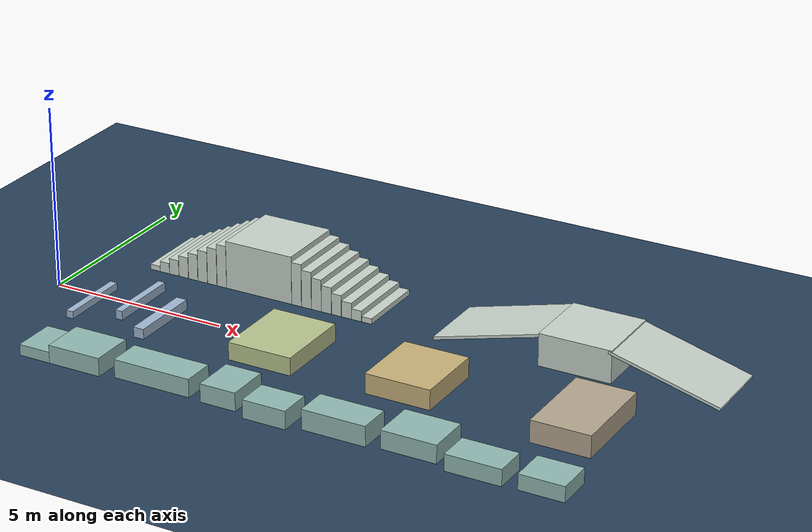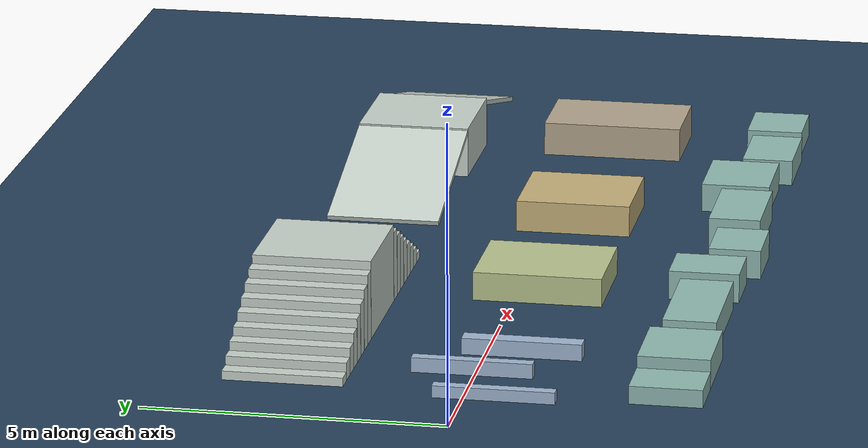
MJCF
<mujoco model="parkour_terrain">
  <include file="materials.xml"/>

  <worldbody>
    <light name="fill_light" directional="true" diffuse="0.6 0.6 0.6" specular="0.02 0.02 0.02" pos="-2 3 3" dir="0.5 -0.5 -1" castshadow="false" cutoff="255"/>
    <light name="rim_light" directional="true" diffuse="0.35 0.35 0.35" specular="0.01 0.01 0.01" pos="0 -4 3" dir="0 0.7 -1" castshadow="false" cutoff="255"/>
    <light name="ambient_fill" directional="false" diffuse="0.4 0.4 0.4" specular="0 0 0" pos="0 0 3" castshadow="false" cutoff="255"/>
    <geom name="floor" size="0 0 0.05" friction="0.75 .1 .1" type="plane" material="groundplane"/>

    <!-- [> 0.60 m high platform, followed by a short landing section back at ground height. <] -->
    <!-- [> Stair up then down: 0.30 m tread length, 0.16 m height increments. <] -->
    <!-- [> 0.60 m gap: run-up ends at x=10.20 and landing starts at x=10.80. <] -->
    <!-- [> 0.70 m gap: run-up ends at x=10.20 and landing starts at x=10.80. <] -->

    <geom name="Stairs_2" type="box" size="0.1455 1 0.075" pos="1.7 3 0.075" rgba="0.784314 0.827451 0.796078 1" friction="1 0.005 0.0001" condim="3"/>
    <geom name="Stairs_2_step_02" type="box" size="0.1455 1 0.15" pos="2 3 0.15" rgba="0.784314 0.827451 0.796078 1" friction="1 0.005 0.0001" condim="3"/>
    <geom name="Stairs_2_step_03" type="box" size="0.1455 1 0.225" pos="2.3 3 0.225" rgba="0.784314 0.827451 0.796078 1" friction="1 0.005 0.0001" condim="3"/>
    <geom name="Stairs_2_step_04" type="box" size="0.1455 1 0.3" pos="2.6 3 0.3" rgba="0.784314 0.827451 0.796078 1" friction="1 0.005 0.0001" condim="3"/>
    <geom name="Stairs_2_step_05" type="box" size="0.1455 1 0.375" pos="2.9 3 0.375" rgba="0.784314 0.827451 0.796078 1" friction="1 0.005 0.0001" condim="3"/>
    <geom name="Stairs_2_step_06" type="box" size="0.1455 1 0.45" pos="3.2 3 0.45" rgba="0.784314 0.827451 0.796078 1" friction="1 0.005 0.0001" condim="3"/>
    <geom name="Stairs_2_step_07" type="box" size="0.1455 1 0.525" pos="3.5 3 0.525" rgba="0.784314 0.827451 0.796078 1" friction="1 0.005 0.0001" condim="3"/>
    <geom name="Stairs_2_step_08" type="box" size="0.1455 1 0.6" pos="3.8 3 0.6" rgba="0.784314 0.827451 0.796078 1" friction="1 0.005 0.0001" condim="3"/>
    <geom name="Stairs_2_copy" type="box" size="0.1455 1 0.075" pos="8.2 3 0.075" quat="0 0 0 -1" rgba="0.784314 0.827451 0.796078 1" friction="1 0.005 0.0001" condim="3"/>
    <geom name="Stairs_2_copy_step_02" type="box" size="0.1455 1 0.15" pos="7.9 3 0.15" quat="0 0 0 -1" rgba="0.784314 0.827451 0.796078 1" friction="1 0.005 0.0001" condim="3"/>
    <geom name="Stairs_2_copy_step_03" type="box" size="0.1455 1 0.225" pos="7.6 3 0.225" quat="0 0 0 -1" rgba="0.784314 0.827451 0.796078 1" friction="1 0.005 0.0001" condim="3"/>
    <geom name="Stairs_2_copy_step_04" type="box" size="0.1455 1 0.3" pos="7.3 3 0.3" quat="0 0 0 -1" rgba="0.784314 0.827451 0.796078 1" friction="1 0.005 0.0001" condim="3"/>
    <geom name="Stairs_2_copy_step_05" type="box" size="0.1455 1 0.375" pos="7 3 0.375" quat="0 0 0 -1" rgba="0.784314 0.827451 0.796078 1" friction="1 0.005 0.0001" condim="3"/>
    <geom name="Stairs_2_copy_step_06" type="box" size="0.1455 1 0.45" pos="6.7 3 0.45" quat="0 0 0 -1" rgba="0.784314 0.827451 0.796078 1" friction="1 0.005 0.0001" condim="3"/>
    <geom name="Stairs_2_copy_step_07" type="box" size="0.1455 1 0.525" pos="6.4 3 0.525" quat="0 0 0 -1" rgba="0.784314 0.827451 0.796078 1" friction="1 0.005 0.0001" condim="3"/>
    <geom name="Stairs_2_copy_step_08" type="box" size="0.1455 1 0.6" pos="6.1 3 0.6" quat="0 0 0 -1" rgba="0.784314 0.827451 0.796078 1" friction="1 0.005 0.0001" condim="3"/>
    <geom name="Platform_3_copy" type="box" size="1 1 0.675" pos="4.95 3 0.675" rgba="0.784314 0.827451 0.796078 1" friction="1 0.005 0.0001" condim="3"/>
    <geom name="Platform_2_copy_2" type="box" size="0.1 1 0.1" pos="1.4 -0.5 0.1" rgba="0.623529 0.713725 0.815686 1" friction="1 0.005 0.0001" condim="3"/>
    <geom name="Platform_3_copy_2_copy" type="box" size="0.9 1.1 0.245" pos="7.133333 -0.4 0.245" rgba="0.721569 0.764706 0.556863 1" friction="1 0.005 0.0001" condim="3"/>
    <geom name="Platform_3_copy_2_copy_copy" type="box" size="1 1 0.45" pos="14.1 3 0.45" rgba="0.784314 0.827451 0.796078 1" friction="1 0.005 0.0001" condim="3"/>
    <geom name="Platform_3_copy_2_copy_copy_copy" type="box" size="0.8 1.25 0.3" pos="15.5 -0.4 0.3" rgba="0.701961 0.647059 0.552941 1" friction="1 0.005 0.0001" condim="3"/>
    <geom name="Platform_2_copy_copy" type="box" size="0.75 0.6 0.25" pos="3.2 -3.25 0.25" rgba="0.568627 0.72549 0.698039 1" friction="1 0.005 0.0001" condim="3"/>
    <geom name="Platform_2_copy_copy_copy" type="box" size="1.09 0.45 0.25" pos="5.4 -3.25 0.25" rgba="0.568627 0.72549 0.698039 1" friction="1 0.005 0.0001" condim="3"/>
    <geom name="Platform_2_copy_copy_copy_copy" type="box" size="0.5 0.6 0.25" pos="7.35 -3.15 0.25" rgba="0.568627 0.72549 0.698039 1" friction="1 0.005 0.0001" condim="3"/>
    <geom name="Platform_2_copy_copy_copy_copy_copy" type="box" size="0.875 0.45 0.275" pos="10.5825 -3.3 0.275" rgba="0.568627 0.72549 0.698039 1" friction="1 0.005 0.0001" condim="3"/>
    <geom name="Platform_2_copy_copy_copy_copy_copy_copy" type="box" size="0.75 0.6 0.25" pos="12.55 -3.05 0.25" rgba="0.568627 0.72549 0.698039 1" friction="1 0.005 0.0001" condim="3"/>
    <geom name="Platform_3_copy_2_copy_copy_copy_2" type="box" size="0.9 1 0.275" pos="11 -0.4 0.275" rgba="0.776471 0.694118 0.478431 1" friction="1 0.005 0.0001" condim="3"/>
    <geom name="Ramp_2" type="box" size="1 1.552914 0.04" pos="11.65 3 0.440561" quat="0.701057 0.092296 -0.092296 -0.701057" rgba="0.784314 0.827451 0.796078 1" friction="1 0.005 0.0001" condim="3"/>
    <geom name="Ramp_2_copy" type="box" size="1 1.552914 0.04" pos="16.5 3 0.440561" quat="0.701057 0.092296 0.092296 0.701057" rgba="0.784314 0.827451 0.796078 1" friction="1 0.005 0.0001" condim="3"/>
    <geom name="Platform_2_copy_2_copy" type="box" size="0.45 0.6 0.15" pos="2 -3.25 0.15" rgba="0.568627 0.72549 0.698039 1" friction="1 0.005 0.0001" condim="3"/>
    <geom name="Platform_2_copy_copy_copy_copy_copy_copy_copy" type="box" size="0.75 0.45 0.225" pos="14.35 -3.4 0.225" rgba="0.568627 0.72549 0.698039 1" friction="1 0.005 0.0001" condim="3"/>
    <geom name="Platform_2_copy_2_copy_2" type="box" size="0.1 1 0.125" pos="2.55 0.05 0.125" rgba="0.623529 0.713725 0.815686 1" friction="1 0.005 0.0001" condim="3"/>
    <geom name="Platform_2_copy_2_copy_2_copy" type="box" size="0.15 1 0.14" pos="3.6 -0.6 0.14" rgba="0.623529 0.713725 0.815686 1" friction="1 0.005 0.0001" condim="3"/>
    <geom name="Platform_2_copy_copy_copy_copy_copy_copy_copy_copy" type="box" size="0.6 0.5 0.21" pos="16.0825 -3.3 0.21" rgba="0.568627 0.72549 0.698039 1" friction="1 0.005 0.0001" condim="3"/>
    <geom name="Platform_2_copy_copy_copy_copy_copy_2" type="box" size="0.6 0.45 0.25" pos="8.78 -3.5 0.25" rgba="0.568627 0.72549 0.698039 1" friction="1 0.005 0.0001" condim="3"/>

    </worldbody>
</mujoco>

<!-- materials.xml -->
<mujoco model="scene_materials">
  <asset>
    <texture type="skybox" builtin="flat" rgb1="0 0 0" rgb2="0 0 0" width="512" height="3072"/>

    <texture type="2d" name="groundplane" builtin="checker" mark="edge" rgb1="0.2 0.3 0.4" rgb2="0.1 0.2 0.3" markrgb="0.8 0.8 0.8" width="300" height="300"/>
    <material name="groundplane" texture="groundplane" texuniform="true" texrepeat="5 5" reflectance="0.2"/>

    <material name="rough_obstacles" rgba="0.35 0.35 0.35 1.0"/>
  </asset>
</mujoco>
